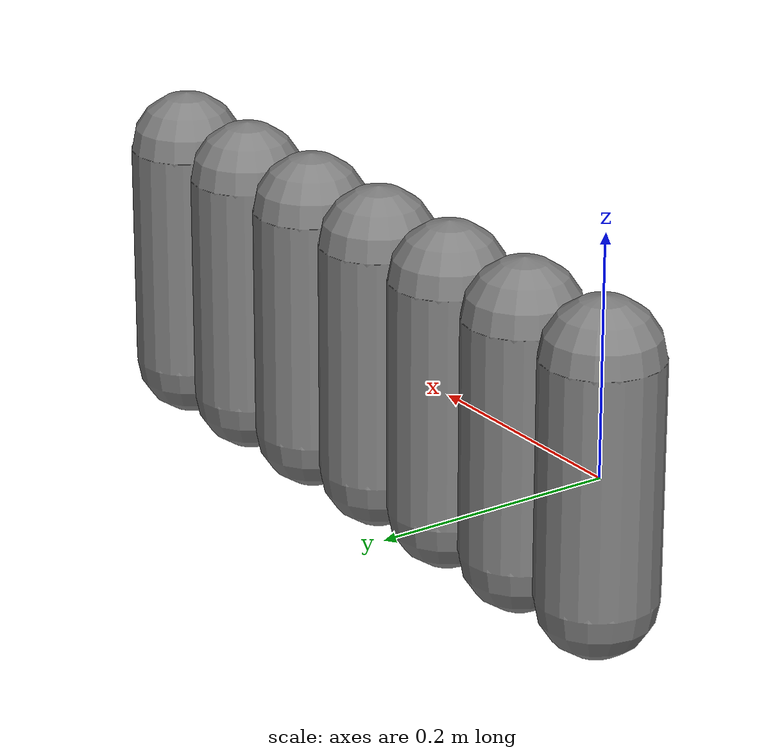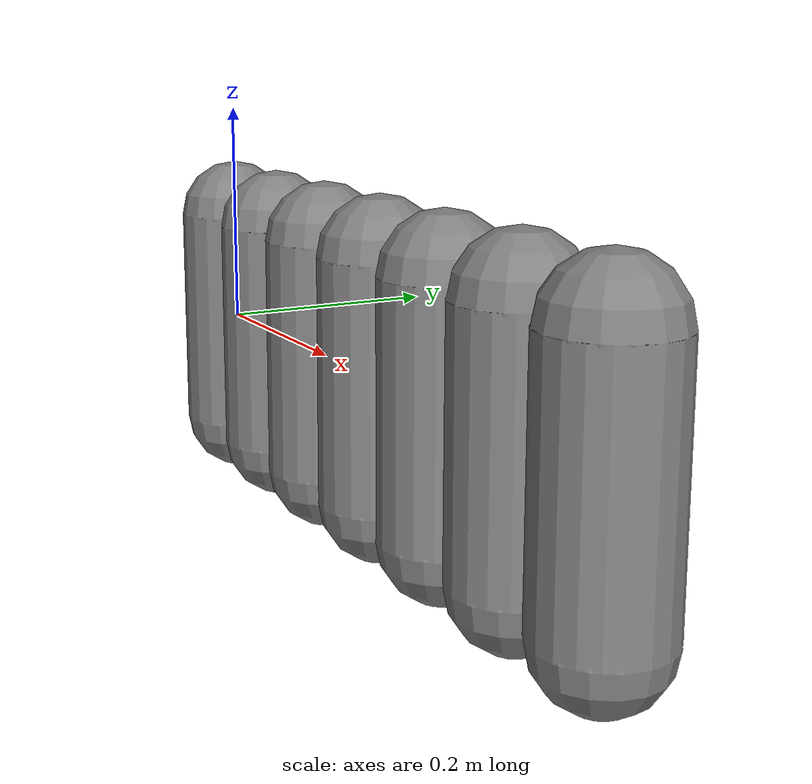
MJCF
<mujoco model="n_swimmer">
  <compiler angle="radian"/>
  <default>
    <joint armature="0.1" damping="1.0"/>
    <geom type="capsule" size="0.05 0.1" density="1000"/>
  </default>

  <worldbody>
    <body name="torso" pos="0 0 0">
      <geom size="0.05 0.1"/>

        <body name="link0" pos="0.1 0 0">
          <joint name="joint0" type="hinge" axis="0 0 1" range="-100 100"/>
          <geom/>

        <body name="link1" pos="0.1 0 0">
          <joint name="joint1" type="hinge" axis="0 0 1" range="-100 100"/>
          <geom/>

        <body name="link2" pos="0.1 0 0">
          <joint name="joint2" type="hinge" axis="0 0 1" range="-100 100"/>
          <geom/>

        <body name="link3" pos="0.1 0 0">
          <joint name="joint3" type="hinge" axis="0 0 1" range="-100 100"/>
          <geom/>

        <body name="link4" pos="0.1 0 0">
          <joint name="joint4" type="hinge" axis="0 0 1" range="-100 100"/>
          <geom/>

        <body name="link5" pos="0.1 0 0">
          <joint name="joint5" type="hinge" axis="0 0 1" range="-100 100"/>
          <geom/>
        </body></body></body></body></body></body>
    </body>
  </worldbody>

  <actuator>
    <motor joint="joint0" ctrlrange="-1 1"/>
<motor joint="joint1" ctrlrange="-1 1"/>
<motor joint="joint2" ctrlrange="-1 1"/>
<motor joint="joint3" ctrlrange="-1 1"/>
<motor joint="joint4" ctrlrange="-1 1"/>
<motor joint="joint5" ctrlrange="-1 1"/>
  </actuator>
</mujoco>
